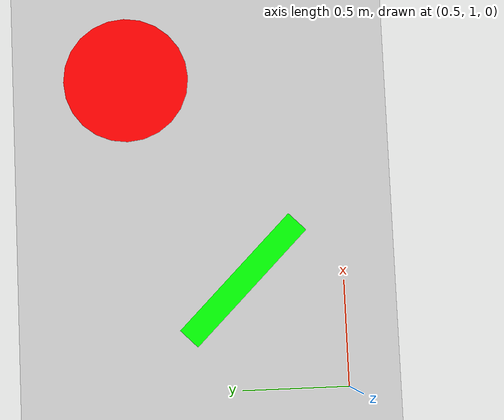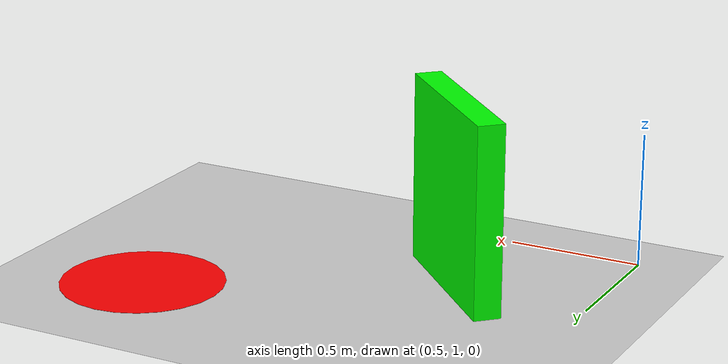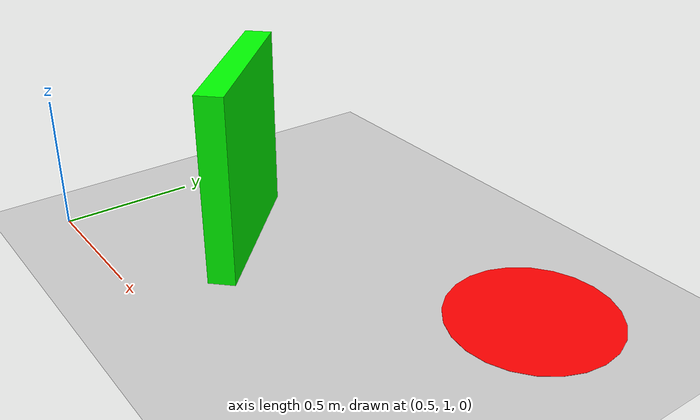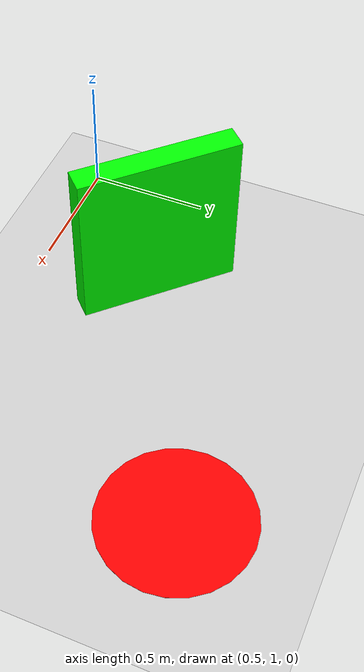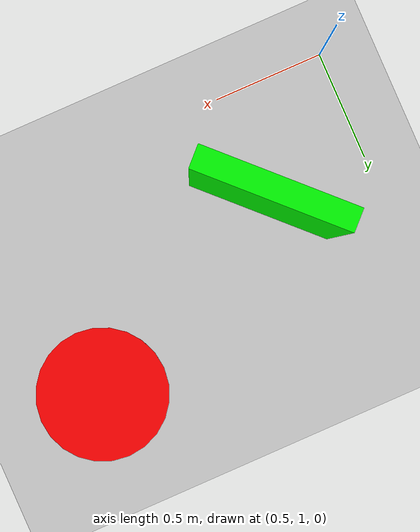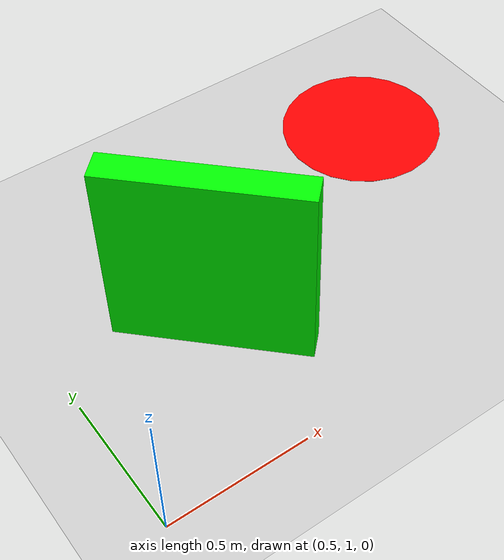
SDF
<?xml version="1.0" ?>
<sdf version="1.8">
  <world name="world_for_balance_robot">

    <plugin filename="libignition-gazebo-physics-system.so" name="ignition::gazebo::systems::Physics"></plugin>
    <plugin filename="libignition-gazebo-user-commands-system.so" name="ignition::gazebo::systems::UserCommands"></plugin>
    <plugin filename="libignition-gazebo-scene-broadcaster-system.so" name="ignition::gazebo::systems::SceneBroadcaster"></plugin>
    <plugin filename="libignition-gazebo-sensors-system.so" name="ignition::gazebo::systems::Sensors">
      <render_engine>ogre2</render_engine>
    </plugin>
    <light type="directional" name="sun">
      <cast_shadows>true</cast_shadows>
      <pose>0 0 10 0 0 0</pose>
      <diffuse>0.8 0.8 0.8 1</diffuse>
      <specular>0.2 0.2 0.2 1</specular>
      <attenuation>
        <range>1000</range>
        <constant>0.9</constant>
        <linear>0.01</linear>
        <quadratic>0.001</quadratic>
      </attenuation>
      <direction>-0.5 0.1 -0.9</direction>
    </light>

    <model name="ground_plane">
      <static>true</static>
      <link name="link">
        <collision name="collision">
          <geometry>
            <plane>
              <normal>0 0 1</normal>
              <size>100 100</size>
            </plane>
          </geometry>
        </collision>
        <visual name="visual">
          <geometry>
            <plane>
              <normal>0 0 1</normal>
              <size>100 100</size>
            </plane>
          </geometry>
          <material>
            <ambient>0.8 0.8 0.8 1</ambient>
            <diffuse>0.8 0.8 0.8 1</diffuse>
            <specular>0.8 0.8 0.8 1</specular>
          </material>
        </visual>
      </link>
    </model>

    <model name='green_obstacle'>
      <static>true</static>
      <pose>1.0 1.5 0.35 0 0 -0.785398</pose>
      <link name='obstacle_link'>
        <collision name='obstacle_collision'>
          <geometry>
            <box>
              <size>0.66 0.1 0.7</size>
            </box>
          </geometry>
        </collision>
        <visual name='obstacle_visual'>
          <geometry>
            <box>
              <size>0.66 0.1 0.7</size>
            </box>
          </geometry>
          <material>
            <ambient>0.0 1.0 0.0 1.0</ambient>
            <diffuse>0.0 1.0 0.0 1.0</diffuse>
            <specular>0.1 0.1 0.1 1.0</specular>
          </material>
        </visual>
      </link>
    </model>

    <model name='target_paint_mark'>
      <static>true</static>

      <pose>2.0 2.0 0.001 0 0 0</pose>

      <link name='paint_link'>
        <visual name='paint_visual'>
          <geometry>
            <cylinder>
              <radius>0.3</radius>    <length>0.001</length>  </cylinder>
          </geometry>
          <material>
            <ambient>1.0 0.0 0.0 1.0</ambient>
            <diffuse>1.0 0.0 0.0 1.0</diffuse>

            <specular>0.0 0.0 0.0 1.0</specular>
          </material>
        </visual>
      </link>
    </model>

  </world>
</sdf>
